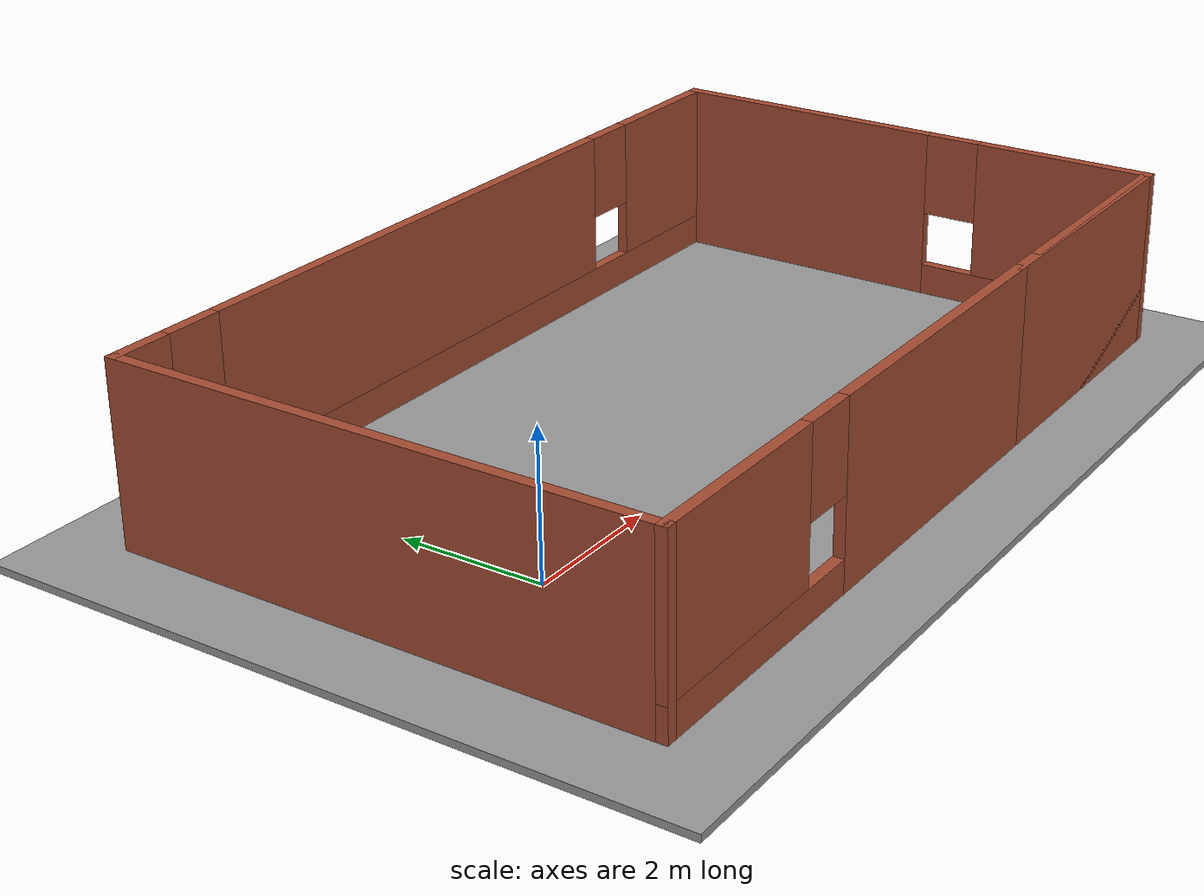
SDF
<sdf version="1.7">
 <world name="default">
  <model name="ground_plane">
   <static>1</static>
   <link name="link">
    <collision name="collision">
     <geometry><plane><normal>0 0 1</normal><size>100 100</size></plane></geometry>
     <surface><friction><ode><mu>100</mu><mu2>50</mu2></ode></friction></surface>
    </collision>
    <visual name="visual">
     <cast_shadows>0</cast_shadows>
     <geometry><plane><normal>0 0 1</normal><size>100 100</size></plane></geometry>
     <material>
      <script><uri>file://media/materials/scripts/gazebo.material</uri><name>Gazebo/Grey</name></script>
     </material>
    </visual>
   </link>
  </model>
  <model name="ground_plane_0">
   <static>1</static>
   <link name="link">
    <collision name="collision">
     <geometry><plane><normal>0 0 1</normal><size>100 100</size></plane></geometry>
     <surface><friction><ode><mu>100</mu><mu2>50</mu2></ode></friction></surface>
    </collision>
    <visual name="visual">
     <cast_shadows>0</cast_shadows>
     <geometry><plane><normal>0 0 1</normal><size>100 100</size></plane></geometry>
     <material>
      <script><uri>file://media/materials/scripts/gazebo.material</uri><name>Gazebo/Grey</name></script>
     </material>
    </visual>
   </link>
   <pose>-3.14309 -0.213142 0 0 -0 0</pose>
  </model>
  <model name="example_house">
   <pose>4.10178 0.73393 0 0 -0 0</pose>
   <link name="Wall_10">
    <pose>-2.07146 -3.675 0 0 -0 3.14159</pose>
    <visual name="Wall_10_Visual_0">
     <pose>-1.79211 0 1.25 0 -0 0</pose>
     <geometry><box><size>4.52286 0.15 2.5</size></box></geometry>
     <material>
      <script><uri>file://media/materials/scripts/gazebo.material</uri><name>Gazebo/Bricks</name></script>
      <ambient>1 1 1 1</ambient>
     </material>
     <meta><layer>0</layer></meta>
    </visual>
    <collision name="Wall_10_Collision_0">
     <geometry><box><size>4.52286 0.15 2.5</size></box></geometry>
     <pose>-1.79211 0 1.25 0 -0 0</pose>
    </collision>
    <visual name="Wall_10_Visual_1">
     <pose>2.26143 0 0.25 0 -0 0</pose>
     <geometry><box><size>3.58421 0.15 0.5</size></box></geometry>
     <material>
      <script><uri>file://media/materials/scripts/gazebo.material</uri><name>Gazebo/Bricks</name></script>
      <ambient>1 1 1 1</ambient>
     </material>
     <meta><layer>0</layer></meta>
    </visual>
    <collision name="Wall_10_Collision_1">
     <geometry><box><size>3.58421 0.15 0.5</size></box></geometry>
     <pose>2.26143 0 0.25 0 -0 0</pose>
    </collision>
    <visual name="Wall_10_Visual_2">
     <pose>2.66143 0 1.5 0 -0 0</pose>
     <geometry><box><size>2.78421 0.15 2</size></box></geometry>
     <material>
      <script><uri>file://media/materials/scripts/gazebo.material</uri><name>Gazebo/Bricks</name></script>
      <ambient>1 1 1 1</ambient>
     </material>
     <meta><layer>0</layer></meta>
    </visual>
    <collision name="Wall_10_Collision_2">
     <geometry><box><size>2.78421 0.15 2</size></box></geometry>
     <pose>2.66143 0 1.5 0 -0 0</pose>
    </collision>
    <visual name="Wall_10_Visual_3">
     <pose>0.869324 0 1.9 0 -0 0</pose>
     <geometry><box><size>0.8 0.15 1.2</size></box></geometry>
     <material>
      <script><uri>file://media/materials/scripts/gazebo.material</uri><name>Gazebo/Bricks</name></script>
      <ambient>1 1 1 1</ambient>
     </material>
     <meta><layer>0</layer></meta>
    </visual>
    <collision name="Wall_10_Collision_3">
     <geometry><box><size>0.8 0.15 1.2</size></box></geometry>
     <pose>0.869324 0 1.9 0 -0 0</pose>
    </collision>
   </link>
   <link name="Wall_14">
    <collision name="Wall_14_Collision">
     <geometry><box><size>7.5 0.15 2.5</size></box></geometry>
     <pose>0 0 1.25 0 -0 0</pose>
    </collision>
    <visual name="Wall_14_Visual">
     <pose>0 0 1.25 0 -0 0</pose>
     <geometry><box><size>7.5 0.15 2.5</size></box></geometry>
     <material>
      <script><uri>file://media/materials/scripts/gazebo.material</uri><name>Gazebo/Bricks</name></script>
      <ambient>1 1 1 1</ambient>
     </material>
     <meta><layer>0</layer></meta>
    </visual>
    <pose>-6.05 -0 0 0 -0 1.5708</pose>
   </link>
   <link name="Wall_15">
    <pose>-0 3.675 0 0 -0 0</pose>
    <visual name="Wall_15_Visual_0">
     <pose>-5.69289 0 1.25 0 -0 0</pose>
     <geometry><box><size>0.864214 0.15 2.5</size></box></geometry>
     <material>
      <script><uri>file://media/materials/scripts/gazebo.material</uri><name>Gazebo/Bricks</name></script>
      <ambient>1 1 1 1</ambient>
     </material>
     <meta><layer>0</layer></meta>
    </visual>
    <collision name="Wall_15_Collision_0">
     <geometry><box><size>0.864214 0.15 2.5</size></box></geometry>
     <pose>-5.69289 0 1.25 0 -0 0</pose>
    </collision>
    <visual name="Wall_15_Visual_1">
     <pose>0.432107 0 0.25 0 -0 0</pose>
     <geometry><box><size>11.3858 0.15 0.5</size></box></geometry>
     <material>
      <script><uri>file://media/materials/scripts/gazebo.material</uri><name>Gazebo/Bricks</name></script>
      <ambient>1 1 1 1</ambient>
     </material>
     <meta><layer>0</layer></meta>
    </visual>
    <collision name="Wall_15_Collision_1">
     <geometry><box><size>11.3858 0.15 0.5</size></box></geometry>
     <pose>0.432107 0 0.25 0 -0 0</pose>
    </collision>
    <visual name="Wall_15_Visual_2">
     <pose>-0.620786 0 1.5 0 -0 0</pose>
     <geometry><box><size>7.68 0.15 2</size></box></geometry>
     <material>
      <script><uri>file://media/materials/scripts/gazebo.material</uri><name>Gazebo/Bricks</name></script>
      <ambient>1 1 1 1</ambient>
     </material>
     <meta><layer>0</layer></meta>
    </visual>
    <collision name="Wall_15_Collision_2">
     <geometry><box><size>7.68 0.15 2</size></box></geometry>
     <pose>-0.620786 0 1.5 0 -0 0</pose>
    </collision>
    <visual name="Wall_15_Visual_3">
     <pose>5.07211 0 1.5 0 -0 0</pose>
     <geometry><box><size>2.10579 0.15 2</size></box></geometry>
     <material>
      <script><uri>file://media/materials/scripts/gazebo.material</uri><name>Gazebo/Bricks</name></script>
      <ambient>1 1 1 1</ambient>
     </material>
     <meta><layer>0</layer></meta>
    </visual>
    <collision name="Wall_15_Collision_3">
     <geometry><box><size>2.10579 0.15 2</size></box></geometry>
     <pose>5.07211 0 1.5 0 -0 0</pose>
    </collision>
    <visual name="Wall_15_Visual_4">
     <pose>-4.86079 0 1.9 0 -0 0</pose>
     <geometry><box><size>0.8 0.15 1.2</size></box></geometry>
     <material>
      <script><uri>file://media/materials/scripts/gazebo.material</uri><name>Gazebo/Bricks</name></script>
      <ambient>1 1 1 1</ambient>
     </material>
     <meta><layer>0</layer></meta>
    </visual>
    <collision name="Wall_15_Collision_4">
     <geometry><box><size>0.8 0.15 1.2</size></box></geometry>
     <pose>-4.86079 0 1.9 0 -0 0</pose>
    </collision>
    <visual name="Wall_15_Visual_5">
     <pose>3.61921 0 1.9 0 -0 0</pose>
     <geometry><box><size>0.8 0.15 1.2</size></box></geometry>
     <material>
      <script><uri>file://media/materials/scripts/gazebo.material</uri><name>Gazebo/Bricks</name></script>
      <ambient>1 1 1 1</ambient>
     </material>
     <meta><layer>0</layer></meta>
    </visual>
    <collision name="Wall_15_Collision_5">
     <geometry><box><size>0.8 0.15 1.2</size></box></geometry>
     <pose>3.61921 0 1.9 0 -0 0</pose>
    </collision>
   </link>
   <link name="Wall_16">
    <pose>6.05 -0 0 0 -0 -1.5708</pose>
    <visual name="Wall_16_Visual_0">
     <pose>-1.70434 0 1.25 0 -0 0</pose>
     <geometry><box><size>4.09176 0.15 2.5</size></box></geometry>
     <material>
      <script><uri>file://media/materials/scripts/gazebo.material</uri><name>Gazebo/Bricks</name></script>
      <ambient>1 1 1 1</ambient>
     </material>
     <meta><layer>0</layer></meta>
    </visual>
    <collision name="Wall_16_Collision_0">
     <geometry><box><size>4.09176 0.15 2.5</size></box></geometry>
     <pose>-1.70434 0 1.25 0 -0 0</pose>
    </collision>
    <visual name="Wall_16_Visual_1">
     <pose>2.04588 0 0.25 0 -0 0</pose>
     <geometry><box><size>3.40868 0.15 0.5</size></box></geometry>
     <material>
      <script><uri>file://media/materials/scripts/gazebo.material</uri><name>Gazebo/Bricks</name></script>
      <ambient>1 1 1 1</ambient>
     </material>
     <meta><layer>0</layer></meta>
    </visual>
    <collision name="Wall_16_Collision_1">
     <geometry><box><size>3.40868 0.15 0.5</size></box></geometry>
     <pose>2.04588 0 0.25 0 -0 0</pose>
    </collision>
    <visual name="Wall_16_Visual_2">
     <pose>2.44588 0 1.5 0 -0 0</pose>
     <geometry><box><size>2.60868 0.15 2</size></box></geometry>
     <material>
      <script><uri>file://media/materials/scripts/gazebo.material</uri><name>Gazebo/Bricks</name></script>
      <ambient>1 1 1 1</ambient>
     </material>
     <meta><layer>0</layer></meta>
    </visual>
    <collision name="Wall_16_Collision_2">
     <geometry><box><size>2.60868 0.15 2</size></box></geometry>
     <pose>2.44588 0 1.5 0 -0 0</pose>
    </collision>
    <visual name="Wall_16_Visual_3">
     <pose>0.741537 0 1.9 0 -0 0</pose>
     <geometry><box><size>0.8 0.15 1.2</size></box></geometry>
     <material>
      <script><uri>file://media/materials/scripts/gazebo.material</uri><name>Gazebo/Bricks</name></script>
      <ambient>1 1 1 1</ambient>
     </material>
     <meta><layer>0</layer></meta>
    </visual>
    <collision name="Wall_16_Collision_3">
     <geometry><box><size>0.8 0.15 1.2</size></box></geometry>
     <pose>0.741537 0 1.9 0 -0 0</pose>
    </collision>
   </link>
   <link name="Wall_19">
    <pose>3.97854 -3.675 0 0 -0 0</pose>
    <visual name="Wall_19_Visual_0">
     <pose>0 0 1.25 0 -0 0</pose>
     <geometry><box><size>4.29293 0.15 2.5</size></box></geometry>
     <material>
      <script><uri>file://media/materials/scripts/gazebo.material</uri><name>Gazebo/Bricks</name></script>
      <ambient>1 1 1 1</ambient>
     </material>
     <meta><layer>0</layer></meta>
    </visual>
    <collision name="Wall_19_Collision_0">
     <geometry><box><size>4.29293 0.15 2.5</size></box></geometry>
     <pose>0 0 1.25 0 -0 0</pose>
    </collision>
    <visual name="Wall_19_Visual_1">
     <pose>0.298569 0 1.25 0 -0 0</pose>
     <geometry><box><size>3.69579 0.15 2.5</size></box></geometry>
     <material>
      <script><uri>file://media/materials/scripts/gazebo.material</uri><name>Gazebo/Bricks</name></script>
      <ambient>1 1 1 1</ambient>
     </material>
     <meta><layer>0</layer></meta>
    </visual>
    <collision name="Wall_19_Collision_1">
     <geometry><box><size>3.69579 0.15 2.5</size></box></geometry>
     <pose>0.298569 0 1.25 0 -0 0</pose>
    </collision>
   </link>
   <static>1</static>
  </model>
 </world>
</sdf>
